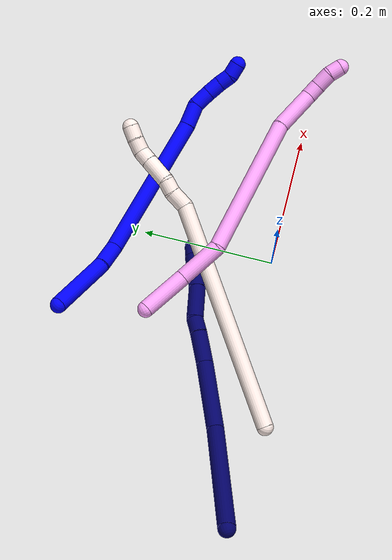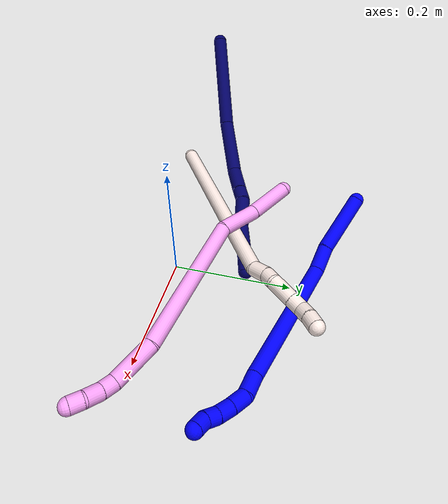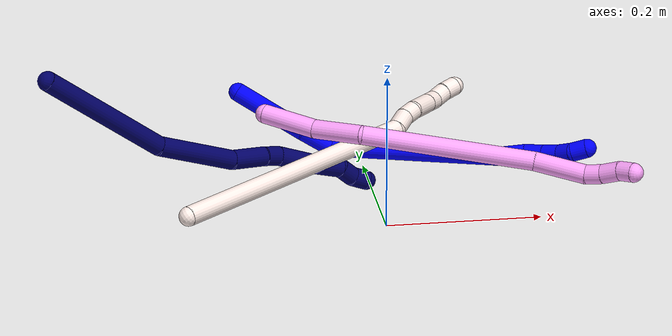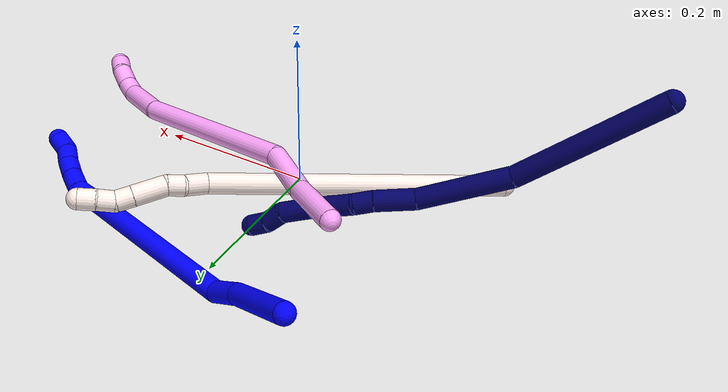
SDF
<sdf version="1.7">
 <world name="default">
  <model name="1">
   <static>0</static>
   <link name="1">
    <collision name="collision-cylinder-e_1_1_4">
     <pose>0.050886 -0.006132 -0.006552 2.38928 1.39624 2.26171</pose>
     <geometry><cylinder><radius>0.0125</radius><length>0.103343</length></cylinder></geometry>
     <surface>
      <friction><ode><mu>1.16</mu><mu2>1.16</mu2><slip1>0</slip1><slip2>0</slip2></ode></friction>
      <contact><ode><kp>1e+06</kp><kd>1</kd><max_vel>0</max_vel><min_depth>0.001</min_depth></ode></contact>
     </surface>
    </collision>
    <visual name="visual-cylinder-e_1_1_4">
     <pose>0.050886 -0.006132 -0.006552 2.38928 1.39624 2.26171</pose>
     <geometry><cylinder><radius>0.0125</radius><length>0.103343</length></cylinder></geometry>
     <material><ambient>0 0 1 1</ambient></material>
    </visual>
    <collision name="collision-cylinder-e_2_4_5">
     <pose>0.122388 -0.018203 -0.014218 1.75629 1.28565 1.46845</pose>
     <geometry><cylinder><radius>0.0125</radius><length>0.042965</length></cylinder></geometry>
     <surface>
      <friction><ode><mu>1.16</mu><mu2>1.16</mu2><slip1>0</slip1><slip2>0</slip2></ode></friction>
      <contact><ode><kp>1e+06</kp><kd>1</kd><max_vel>0</max_vel><min_depth>0.001</min_depth></ode></contact>
     </surface>
    </collision>
    <visual name="visual-cylinder-e_2_4_5">
     <pose>0.122388 -0.018203 -0.014218 1.75629 1.28565 1.46845</pose>
     <geometry><cylinder><radius>0.0125</radius><length>0.042965</length></cylinder></geometry>
     <material><ambient>0 0 1 1</ambient></material>
    </visual>
    <collision name="collision-cylinder-e_3_5_6">
     <pose>0.232405 -0.06129 -0.073582 2.57389 0.912888 2.06942</pose>
     <geometry><cylinder><radius>0.0125</radius><length>0.225972</length></cylinder></geometry>
     <surface>
      <friction><ode><mu>1.16</mu><mu2>1.16</mu2><slip1>0</slip1><slip2>0</slip2></ode></friction>
      <contact><ode><kp>1e+06</kp><kd>1</kd><max_vel>0</max_vel><min_depth>0.001</min_depth></ode></contact>
     </surface>
    </collision>
    <visual name="visual-cylinder-e_3_5_6">
     <pose>0.232405 -0.06129 -0.073582 2.57389 0.912888 2.06942</pose>
     <geometry><cylinder><radius>0.0125</radius><length>0.225972</length></cylinder></geometry>
     <material><ambient>0 0 1 1</ambient></material>
    </visual>
    <collision name="collision-cylinder-e_4_6_7">
     <pose>0.334014 -0.10633 -0.142329 2.49698 0.748832 1.73278</pose>
     <geometry><cylinder><radius>0.0125</radius><length>0.035859</length></cylinder></geometry>
     <surface>
      <friction><ode><mu>1.16</mu><mu2>1.16</mu2><slip1>0</slip1><slip2>0</slip2></ode></friction>
      <contact><ode><kp>1e+06</kp><kd>1</kd><max_vel>0</max_vel><min_depth>0.001</min_depth></ode></contact>
     </surface>
    </collision>
    <visual name="visual-cylinder-e_4_6_7">
     <pose>0.334014 -0.10633 -0.142329 2.49698 0.748832 1.73278</pose>
     <geometry><cylinder><radius>0.0125</radius><length>0.035859</length></cylinder></geometry>
     <material><ambient>0 0 1 1</ambient></material>
    </visual>
    <collision name="collision-cylinder-e_5_7_8">
     <pose>0.356217 -0.114599 -0.162164 3.10118 0.819146 3.04856</pose>
     <geometry><cylinder><radius>0.0125</radius><length>0.027368</length></cylinder></geometry>
     <surface>
      <friction><ode><mu>1.16</mu><mu2>1.16</mu2><slip1>0</slip1><slip2>0</slip2></ode></friction>
      <contact><ode><kp>1e+06</kp><kd>1</kd><max_vel>0</max_vel><min_depth>0.001</min_depth></ode></contact>
     </surface>
    </collision>
    <visual name="visual-cylinder-e_5_7_8">
     <pose>0.356217 -0.114599 -0.162164 3.10118 0.819146 3.04856</pose>
     <geometry><cylinder><radius>0.0125</radius><length>0.027368</length></cylinder></geometry>
     <material><ambient>0 0 1 1</ambient></material>
    </visual>
    <collision name="collision-cylinder-e_6_8_9">
     <pose>0.374234 -0.11454 -0.180093 -3.09091 0.750272 -3.01303</pose>
     <geometry><cylinder><radius>0.0125</radius><length>0.023523</length></cylinder></geometry>
     <surface>
      <friction><ode><mu>1.16</mu><mu2>1.16</mu2><slip1>0</slip1><slip2>0</slip2></ode></friction>
      <contact><ode><kp>1e+06</kp><kd>1</kd><max_vel>0</max_vel><min_depth>0.001</min_depth></ode></contact>
     </surface>
    </collision>
    <visual name="visual-cylinder-e_6_8_9">
     <pose>0.374234 -0.11454 -0.180093 -3.09091 0.750272 -3.01303</pose>
     <geometry><cylinder><radius>0.0125</radius><length>0.023523</length></cylinder></geometry>
     <material><ambient>0 0 1 1</ambient></material>
    </visual>
    <collision name="collision-cylinder-e_7_9_10">
     <pose>0.387843 -0.112558 -0.196939 -2.95643 0.58727 -2.54576</pose>
     <geometry><cylinder><radius>0.0125</radius><length>0.020176</length></cylinder></geometry>
     <surface>
      <friction><ode><mu>1.16</mu><mu2>1.16</mu2><slip1>0</slip1><slip2>0</slip2></ode></friction>
      <contact><ode><kp>1e+06</kp><kd>1</kd><max_vel>0</max_vel><min_depth>0.001</min_depth></ode></contact>
     </surface>
    </collision>
    <visual name="visual-cylinder-e_7_9_10">
     <pose>0.387843 -0.112558 -0.196939 -2.95643 0.58727 -2.54576</pose>
     <geometry><cylinder><radius>0.0125</radius><length>0.020176</length></cylinder></geometry>
     <material><ambient>0 0 1 1</ambient></material>
    </visual>
    <collision name="collision-cylinder-e_8_10_2">
     <pose>0.399282 -0.113711 -0.213355 2.82218 0.597482 2.17775</pose>
     <geometry><cylinder><radius>0.0125</radius><length>0.020794</length></cylinder></geometry>
     <surface>
      <friction><ode><mu>1.16</mu><mu2>1.16</mu2><slip1>0</slip1><slip2>0</slip2></ode></friction>
      <contact><ode><kp>1e+06</kp><kd>1</kd><max_vel>0</max_vel><min_depth>0.001</min_depth></ode></contact>
     </surface>
    </collision>
    <visual name="visual-cylinder-e_8_10_2">
     <pose>0.399282 -0.113711 -0.213355 2.82218 0.597482 2.17775</pose>
     <geometry><cylinder><radius>0.0125</radius><length>0.020794</length></cylinder></geometry>
     <material><ambient>0 0 1 1</ambient></material>
    </visual>
    <collision name="collision-sphere-2">
     <pose>0.405131 -0.116411 -0.221516 0 -0 0</pose>
     <geometry><sphere><radius>0.0125</radius></sphere></geometry>
     <surface>
      <friction><ode><mu>1.16</mu><mu2>1.16</mu2><slip1>0</slip1><slip2>0</slip2></ode></friction>
      <contact><ode><kp>1e+06</kp><kd>1</kd><max_vel>0</max_vel><min_depth>0.001</min_depth></ode></contact>
     </surface>
    </collision>
    <visual name="visual-sphere-2">
     <pose>0.405131 -0.116411 -0.221516 0 -0 0</pose>
     <geometry><sphere><radius>0.0125</radius></sphere></geometry>
     <material><ambient>0 0 1 1</ambient></material>
    </visual>
    <collision name="collision-sphere-10">
     <pose>0.393432 -0.111012 -0.205194 0 -0 0</pose>
     <geometry><sphere><radius>0.0125</radius></sphere></geometry>
     <surface>
      <friction><ode><mu>1.16</mu><mu2>1.16</mu2><slip1>0</slip1><slip2>0</slip2></ode></friction>
      <contact><ode><kp>1e+06</kp><kd>1</kd><max_vel>0</max_vel><min_depth>0.001</min_depth></ode></contact>
     </surface>
    </collision>
    <visual name="visual-sphere-10">
     <pose>0.393432 -0.111012 -0.205194 0 -0 0</pose>
     <geometry><sphere><radius>0.0125</radius></sphere></geometry>
     <material><ambient>0 0 1 1</ambient></material>
    </visual>
    <collision name="collision-sphere-9">
     <pose>0.382253 -0.114104 -0.188685 0 -0 0</pose>
     <geometry><sphere><radius>0.0125</radius></sphere></geometry>
     <surface>
      <friction><ode><mu>1.16</mu><mu2>1.16</mu2><slip1>0</slip1><slip2>0</slip2></ode></friction>
      <contact><ode><kp>1e+06</kp><kd>1</kd><max_vel>0</max_vel><min_depth>0.001</min_depth></ode></contact>
     </surface>
    </collision>
    <visual name="visual-sphere-9">
     <pose>0.382253 -0.114104 -0.188685 0 -0 0</pose>
     <geometry><sphere><radius>0.0125</radius></sphere></geometry>
     <material><ambient>0 0 1 1</ambient></material>
    </visual>
    <collision name="collision-sphere-4">
     <pose>0.101773 -0.012264 -0.013104 0 -0 0</pose>
     <geometry><sphere><radius>0.0125</radius></sphere></geometry>
     <surface>
      <friction><ode><mu>1.16</mu><mu2>1.16</mu2><slip1>0</slip1><slip2>0</slip2></ode></friction>
      <contact><ode><kp>1e+06</kp><kd>1</kd><max_vel>0</max_vel><min_depth>0.001</min_depth></ode></contact>
     </surface>
    </collision>
    <visual name="visual-sphere-4">
     <pose>0.101773 -0.012264 -0.013104 0 -0 0</pose>
     <geometry><sphere><radius>0.0125</radius></sphere></geometry>
     <material><ambient>0 0 1 1</ambient></material>
    </visual>
    <collision name="collision-sphere-1">
     <geometry><sphere><radius>0.0125</radius></sphere></geometry>
     <surface>
      <friction><ode><mu>1.16</mu><mu2>1.16</mu2><slip1>0</slip1><slip2>0</slip2></ode></friction>
      <contact><ode><kp>1e+06</kp><kd>1</kd><max_vel>0</max_vel><min_depth>0.001</min_depth></ode></contact>
     </surface>
    </collision>
    <visual name="visual-sphere-1">
     <geometry><sphere><radius>0.0125</radius></sphere></geometry>
     <material><ambient>0 0 1 1</ambient></material>
    </visual>
    <collision name="collision-sphere-8">
     <pose>0.366214 -0.114976 -0.1715 0 -0 0</pose>
     <geometry><sphere><radius>0.0125</radius></sphere></geometry>
     <surface>
      <friction><ode><mu>1.16</mu><mu2>1.16</mu2><slip1>0</slip1><slip2>0</slip2></ode></friction>
      <contact><ode><kp>1e+06</kp><kd>1</kd><max_vel>0</max_vel><min_depth>0.001</min_depth></ode></contact>
     </surface>
    </collision>
    <visual name="visual-sphere-8">
     <pose>0.366214 -0.114976 -0.1715 0 -0 0</pose>
     <geometry><sphere><radius>0.0125</radius></sphere></geometry>
     <material><ambient>0 0 1 1</ambient></material>
    </visual>
    <collision name="collision-sphere-5">
     <pose>0.143003 -0.024143 -0.015333 0 -0 0</pose>
     <geometry><sphere><radius>0.0125</radius></sphere></geometry>
     <surface>
      <friction><ode><mu>1.16</mu><mu2>1.16</mu2><slip1>0</slip1><slip2>0</slip2></ode></friction>
      <contact><ode><kp>1e+06</kp><kd>1</kd><max_vel>0</max_vel><min_depth>0.001</min_depth></ode></contact>
     </surface>
    </collision>
    <visual name="visual-sphere-5">
     <pose>0.143003 -0.024143 -0.015333 0 -0 0</pose>
     <geometry><sphere><radius>0.0125</radius></sphere></geometry>
     <material><ambient>0 0 1 1</ambient></material>
    </visual>
    <collision name="collision-sphere-6">
     <pose>0.321808 -0.098438 -0.131832 0 -0 0</pose>
     <geometry><sphere><radius>0.0125</radius></sphere></geometry>
     <surface>
      <friction><ode><mu>1.16</mu><mu2>1.16</mu2><slip1>0</slip1><slip2>0</slip2></ode></friction>
      <contact><ode><kp>1e+06</kp><kd>1</kd><max_vel>0</max_vel><min_depth>0.001</min_depth></ode></contact>
     </surface>
    </collision>
    <visual name="visual-sphere-6">
     <pose>0.321808 -0.098438 -0.131832 0 -0 0</pose>
     <geometry><sphere><radius>0.0125</radius></sphere></geometry>
     <material><ambient>0 0 1 1</ambient></material>
    </visual>
    <collision name="collision-sphere-7">
     <pose>0.34622 -0.114221 -0.152827 0 -0 0</pose>
     <geometry><sphere><radius>0.0125</radius></sphere></geometry>
     <surface>
      <friction><ode><mu>1.16</mu><mu2>1.16</mu2><slip1>0</slip1><slip2>0</slip2></ode></friction>
      <contact><ode><kp>1e+06</kp><kd>1</kd><max_vel>0</max_vel><min_depth>0.001</min_depth></ode></contact>
     </surface>
    </collision>
    <visual name="visual-sphere-7">
     <pose>0.34622 -0.114221 -0.152827 0 -0 0</pose>
     <geometry><sphere><radius>0.0125</radius></sphere></geometry>
     <material><ambient>0 0 1 1</ambient></material>
    </visual>
    <inertial>
     <pose>0.219383 -0.05909 -0.080207 0 -0 0</pose>
     <mass>0.5</mass>
     <inertia>
      <ixx>0.000272</ixx>
      <ixy>0</ixy>
      <ixz>0</ixz>
      <iyy>0.001397</iyy>
      <iyz>0</iyz>
      <izz>-0.000561</izz>
     </inertia>
    </inertial>
   </link>
   <pose>-0.157883 0.287241 0.081157 -3.07738 0.605098 -0.563404</pose>
  </model>
  <model name="4">
   <static>0</static>
   <link name="4">
    <collision name="collision-cylinder-e_1_1_4">
     <pose>0.005937 0.010677 -0.03429 -2.83973 0.163828 -0.989957</pose>
     <geometry><cylinder><radius>0.0125</radius><length>0.072802</length></cylinder></geometry>
     <surface>
      <friction><ode><mu>1.16</mu><mu2>1.16</mu2><slip1>0</slip1><slip2>0</slip2></ode></friction>
      <contact><ode><kp>1e+06</kp><kd>1</kd><max_vel>0</max_vel><min_depth>0.001</min_depth></ode></contact>
     </surface>
    </collision>
    <visual name="visual-cylinder-e_1_1_4">
     <pose>0.005937 0.010677 -0.03429 -2.83973 0.163828 -0.989957</pose>
     <geometry><cylinder><radius>0.0125</radius><length>0.072802</length></cylinder></geometry>
     <material><ambient>1 0.65098 0.996078 1</ambient></material>
    </visual>
    <collision name="collision-cylinder-e_2_4_5">
     <pose>0.018717 0.025267 -0.101655 -3.02384 0.202646 -2.09081</pose>
     <geometry><cylinder><radius>0.0125</radius><length>0.068003</length></cylinder></geometry>
     <surface>
      <friction><ode><mu>1.16</mu><mu2>1.16</mu2><slip1>0</slip1><slip2>0</slip2></ode></friction>
      <contact><ode><kp>1e+06</kp><kd>1</kd><max_vel>0</max_vel><min_depth>0.001</min_depth></ode></contact>
     </surface>
    </collision>
    <visual name="visual-cylinder-e_2_4_5">
     <pose>0.018717 0.025267 -0.101655 -3.02384 0.202646 -2.09081</pose>
     <geometry><cylinder><radius>0.0125</radius><length>0.068003</length></cylinder></geometry>
     <material><ambient>1 0.65098 0.996078 1</ambient></material>
    </visual>
    <collision name="collision-cylinder-e_3_5_6">
     <pose>0.079008 0.073231 -0.222538 -2.67661 0.498276 -1.64263</pose>
     <geometry><cylinder><radius>0.0125</radius><length>0.223674</length></cylinder></geometry>
     <surface>
      <friction><ode><mu>1.16</mu><mu2>1.16</mu2><slip1>0</slip1><slip2>0</slip2></ode></friction>
      <contact><ode><kp>1e+06</kp><kd>1</kd><max_vel>0</max_vel><min_depth>0.001</min_depth></ode></contact>
     </surface>
    </collision>
    <visual name="visual-cylinder-e_3_5_6">
     <pose>0.079008 0.073231 -0.222538 -2.67661 0.498276 -1.64263</pose>
     <geometry><cylinder><radius>0.0125</radius><length>0.223674</length></cylinder></geometry>
     <material><ambient>1 0.65098 0.996078 1</ambient></material>
    </visual>
    <collision name="collision-cylinder-e_4_6_7">
     <pose>0.141522 0.128849 -0.341301 -2.78398 0.267744 -1.2808</pose>
     <geometry><cylinder><radius>0.0125</radius><length>0.068532</length></cylinder></geometry>
     <surface>
      <friction><ode><mu>1.16</mu><mu2>1.16</mu2><slip1>0</slip1><slip2>0</slip2></ode></friction>
      <contact><ode><kp>1e+06</kp><kd>1</kd><max_vel>0</max_vel><min_depth>0.001</min_depth></ode></contact>
     </surface>
    </collision>
    <visual name="visual-cylinder-e_4_6_7">
     <pose>0.141522 0.128849 -0.341301 -2.78398 0.267744 -1.2808</pose>
     <geometry><cylinder><radius>0.0125</radius><length>0.068532</length></cylinder></geometry>
     <material><ambient>1 0.65098 0.996078 1</ambient></material>
    </visual>
    <collision name="collision-cylinder-e_5_7_8">
     <pose>0.154043 0.140674 -0.382526 -3.11643 0.324504 -2.98816</pose>
     <geometry><cylinder><radius>0.0125</radius><length>0.021678</length></cylinder></geometry>
     <surface>
      <friction><ode><mu>1.16</mu><mu2>1.16</mu2><slip1>0</slip1><slip2>0</slip2></ode></friction>
      <contact><ode><kp>1e+06</kp><kd>1</kd><max_vel>0</max_vel><min_depth>0.001</min_depth></ode></contact>
     </surface>
    </collision>
    <visual name="visual-cylinder-e_5_7_8">
     <pose>0.154043 0.140674 -0.382526 -3.11643 0.324504 -2.98816</pose>
     <geometry><cylinder><radius>0.0125</radius><length>0.021678</length></cylinder></geometry>
     <material><ambient>1 0.65098 0.996078 1</ambient></material>
    </visual>
    <collision name="collision-cylinder-e_6_8_9">
     <pose>0.161292 0.138976 -0.404659 2.9781 0.305579 2.16369</pose>
     <geometry><cylinder><radius>0.0125</radius><length>0.025215</length></cylinder></geometry>
     <surface>
      <friction><ode><mu>1.16</mu><mu2>1.16</mu2><slip1>0</slip1><slip2>0</slip2></ode></friction>
      <contact><ode><kp>1e+06</kp><kd>1</kd><max_vel>0</max_vel><min_depth>0.001</min_depth></ode></contact>
     </surface>
    </collision>
    <visual name="visual-cylinder-e_6_8_9">
     <pose>0.161292 0.138976 -0.404659 2.9781 0.305579 2.16369</pose>
     <geometry><cylinder><radius>0.0125</radius><length>0.025215</length></cylinder></geometry>
     <material><ambient>1 0.65098 0.996078 1</ambient></material>
    </visual>
    <collision name="collision-cylinder-e_7_9_2">
     <pose>0.165579 0.136854 -0.426556 3.12514 0.04922 2.49639</pose>
     <geometry><cylinder><radius>0.0125</radius><length>0.020095</length></cylinder></geometry>
     <surface>
      <friction><ode><mu>1.16</mu><mu2>1.16</mu2><slip1>0</slip1><slip2>0</slip2></ode></friction>
      <contact><ode><kp>1e+06</kp><kd>1</kd><max_vel>0</max_vel><min_depth>0.001</min_depth></ode></contact>
     </surface>
    </collision>
    <visual name="visual-cylinder-e_7_9_2">
     <pose>0.165579 0.136854 -0.426556 3.12514 0.04922 2.49639</pose>
     <geometry><cylinder><radius>0.0125</radius><length>0.020095</length></cylinder></geometry>
     <material><ambient>1 0.65098 0.996078 1</ambient></material>
    </visual>
    <collision name="collision-sphere-2">
     <pose>0.166074 0.136689 -0.436591 0 -0 0</pose>
     <geometry><sphere><radius>0.0125</radius></sphere></geometry>
     <surface>
      <friction><ode><mu>1.16</mu><mu2>1.16</mu2><slip1>0</slip1><slip2>0</slip2></ode></friction>
      <contact><ode><kp>1e+06</kp><kd>1</kd><max_vel>0</max_vel><min_depth>0.001</min_depth></ode></contact>
     </surface>
    </collision>
    <visual name="visual-sphere-2">
     <pose>0.166074 0.136689 -0.436591 0 -0 0</pose>
     <geometry><sphere><radius>0.0125</radius></sphere></geometry>
     <material><ambient>1 0.65098 0.996078 1</ambient></material>
    </visual>
    <collision name="collision-sphere-9">
     <pose>0.165085 0.137019 -0.416522 0 -0 0</pose>
     <geometry><sphere><radius>0.0125</radius></sphere></geometry>
     <surface>
      <friction><ode><mu>1.16</mu><mu2>1.16</mu2><slip1>0</slip1><slip2>0</slip2></ode></friction>
      <contact><ode><kp>1e+06</kp><kd>1</kd><max_vel>0</max_vel><min_depth>0.001</min_depth></ode></contact>
     </surface>
    </collision>
    <visual name="visual-sphere-9">
     <pose>0.165085 0.137019 -0.416522 0 -0 0</pose>
     <geometry><sphere><radius>0.0125</radius></sphere></geometry>
     <material><ambient>1 0.65098 0.996078 1</ambient></material>
    </visual>
    <collision name="collision-sphere-4">
     <pose>0.011874 0.021354 -0.06858 0 -0 0</pose>
     <geometry><sphere><radius>0.0125</radius></sphere></geometry>
     <surface>
      <friction><ode><mu>1.16</mu><mu2>1.16</mu2><slip1>0</slip1><slip2>0</slip2></ode></friction>
      <contact><ode><kp>1e+06</kp><kd>1</kd><max_vel>0</max_vel><min_depth>0.001</min_depth></ode></contact>
     </surface>
    </collision>
    <visual name="visual-sphere-4">
     <pose>0.011874 0.021354 -0.06858 0 -0 0</pose>
     <geometry><sphere><radius>0.0125</radius></sphere></geometry>
     <material><ambient>1 0.65098 0.996078 1</ambient></material>
    </visual>
    <collision name="collision-sphere-1">
     <geometry><sphere><radius>0.0125</radius></sphere></geometry>
     <surface>
      <friction><ode><mu>1.16</mu><mu2>1.16</mu2><slip1>0</slip1><slip2>0</slip2></ode></friction>
      <contact><ode><kp>1e+06</kp><kd>1</kd><max_vel>0</max_vel><min_depth>0.001</min_depth></ode></contact>
     </surface>
    </collision>
    <visual name="visual-sphere-1">
     <geometry><sphere><radius>0.0125</radius></sphere></geometry>
     <material><ambient>1 0.65098 0.996078 1</ambient></material>
    </visual>
    <collision name="collision-sphere-8">
     <pose>0.157499 0.140933 -0.392796 0 -0 0</pose>
     <geometry><sphere><radius>0.0125</radius></sphere></geometry>
     <surface>
      <friction><ode><mu>1.16</mu><mu2>1.16</mu2><slip1>0</slip1><slip2>0</slip2></ode></friction>
      <contact><ode><kp>1e+06</kp><kd>1</kd><max_vel>0</max_vel><min_depth>0.001</min_depth></ode></contact>
     </surface>
    </collision>
    <visual name="visual-sphere-8">
     <pose>0.157499 0.140933 -0.392796 0 -0 0</pose>
     <geometry><sphere><radius>0.0125</radius></sphere></geometry>
     <material><ambient>1 0.65098 0.996078 1</ambient></material>
    </visual>
    <collision name="collision-sphere-5">
     <pose>0.02556 0.02918 -0.13473 0 -0 0</pose>
     <geometry><sphere><radius>0.0125</radius></sphere></geometry>
     <surface>
      <friction><ode><mu>1.16</mu><mu2>1.16</mu2><slip1>0</slip1><slip2>0</slip2></ode></friction>
      <contact><ode><kp>1e+06</kp><kd>1</kd><max_vel>0</max_vel><min_depth>0.001</min_depth></ode></contact>
     </surface>
    </collision>
    <visual name="visual-sphere-5">
     <pose>0.02556 0.02918 -0.13473 0 -0 0</pose>
     <geometry><sphere><radius>0.0125</radius></sphere></geometry>
     <material><ambient>1 0.65098 0.996078 1</ambient></material>
    </visual>
    <collision name="collision-sphere-6">
     <pose>0.132457 0.117282 -0.310347 0 -0 0</pose>
     <geometry><sphere><radius>0.0125</radius></sphere></geometry>
     <surface>
      <friction><ode><mu>1.16</mu><mu2>1.16</mu2><slip1>0</slip1><slip2>0</slip2></ode></friction>
      <contact><ode><kp>1e+06</kp><kd>1</kd><max_vel>0</max_vel><min_depth>0.001</min_depth></ode></contact>
     </surface>
    </collision>
    <visual name="visual-sphere-6">
     <pose>0.132457 0.117282 -0.310347 0 -0 0</pose>
     <geometry><sphere><radius>0.0125</radius></sphere></geometry>
     <material><ambient>1 0.65098 0.996078 1</ambient></material>
    </visual>
    <collision name="collision-sphere-7">
     <pose>0.150587 0.140416 -0.372256 0 -0 0</pose>
     <geometry><sphere><radius>0.0125</radius></sphere></geometry>
     <surface>
      <friction><ode><mu>1.16</mu><mu2>1.16</mu2><slip1>0</slip1><slip2>0</slip2></ode></friction>
      <contact><ode><kp>1e+06</kp><kd>1</kd><max_vel>0</max_vel><min_depth>0.001</min_depth></ode></contact>
     </surface>
    </collision>
    <visual name="visual-sphere-7">
     <pose>0.150587 0.140416 -0.372256 0 -0 0</pose>
     <geometry><sphere><radius>0.0125</radius></sphere></geometry>
     <material><ambient>1 0.65098 0.996078 1</ambient></material>
    </visual>
    <inertial>
     <pose>0.079619 0.074019 -0.219286 0 -0 0</pose>
     <mass>0.5</mass>
     <inertia>
      <ixx>-0.00094</ixx>
      <ixy>0</ixy>
      <ixz>0</ixz>
      <iyy>-0.000634</iyy>
      <iyz>0</iyz>
      <izz>-0.000899</izz>
     </inertia>
    </inertial>
   </link>
   <pose>-0.135597 0.159512 0.098341 -1.67824 -0.329414 0.775263</pose>
  </model>
  <model name="7">
   <static>0</static>
   <link name="7">
    <collision name="collision-cylinder-e_1_1_4">
     <pose>0.011464 -0.023406 -0.086864 2.87839 0.126752 0.894121</pose>
     <geometry><cylinder><radius>0.0125</radius><length>0.18138</length></cylinder></geometry>
     <surface>
      <friction><ode><mu>1.16</mu><mu2>1.16</mu2><slip1>0</slip1><slip2>0</slip2></ode></friction>
      <contact><ode><kp>1e+06</kp><kd>1</kd><max_vel>0</max_vel><min_depth>0.001</min_depth></ode></contact>
     </surface>
    </collision>
    <visual name="visual-cylinder-e_1_1_4">
     <pose>0.011464 -0.023406 -0.086864 2.87839 0.126752 0.894121</pose>
     <geometry><cylinder><radius>0.0125</radius><length>0.18138</length></cylinder></geometry>
     <material><ambient>0.003922 0 0.403922 1</ambient></material>
    </visual>
    <collision name="collision-cylinder-e_2_4_5">
     <pose>0.028657 -0.045352 -0.228597 -3.11498 0.103983 -2.64096</pose>
     <geometry><cylinder><radius>0.0125</radius><length>0.110371</length></cylinder></geometry>
     <surface>
      <friction><ode><mu>1.16</mu><mu2>1.16</mu2><slip1>0</slip1><slip2>0</slip2></ode></friction>
      <contact><ode><kp>1e+06</kp><kd>1</kd><max_vel>0</max_vel><min_depth>0.001</min_depth></ode></contact>
     </surface>
    </collision>
    <visual name="visual-cylinder-e_2_4_5">
     <pose>0.028657 -0.045352 -0.228597 -3.11498 0.103983 -2.64096</pose>
     <geometry><cylinder><radius>0.0125</radius><length>0.110371</length></cylinder></geometry>
     <material><ambient>0.003922 0 0.403922 1</ambient></material>
    </visual>
    <collision name="collision-cylinder-e_3_5_6">
     <pose>0.036002 -0.037105 -0.30666 -2.85696 0.066799 -0.458178</pose>
     <geometry><cylinder><radius>0.0125</radius><length>0.048443</length></cylinder></geometry>
     <surface>
      <friction><ode><mu>1.16</mu><mu2>1.16</mu2><slip1>0</slip1><slip2>0</slip2></ode></friction>
      <contact><ode><kp>1e+06</kp><kd>1</kd><max_vel>0</max_vel><min_depth>0.001</min_depth></ode></contact>
     </surface>
    </collision>
    <visual name="visual-cylinder-e_3_5_6">
     <pose>0.036002 -0.037105 -0.30666 -2.85696 0.066799 -0.458178</pose>
     <geometry><cylinder><radius>0.0125</radius><length>0.048443</length></cylinder></geometry>
     <material><ambient>0.003922 0 0.403922 1</ambient></material>
    </visual>
    <collision name="collision-cylinder-e_4_6_7">
     <pose>0.037733 -0.028248 -0.341144 -2.96018 0.009967 -0.109475</pose>
     <geometry><cylinder><radius>0.0125</radius><length>0.022955</length></cylinder></geometry>
     <surface>
      <friction><ode><mu>1.16</mu><mu2>1.16</mu2><slip1>0</slip1><slip2>0</slip2></ode></friction>
      <contact><ode><kp>1e+06</kp><kd>1</kd><max_vel>0</max_vel><min_depth>0.001</min_depth></ode></contact>
     </surface>
    </collision>
    <visual name="visual-cylinder-e_4_6_7">
     <pose>0.037733 -0.028248 -0.341144 -2.96018 0.009967 -0.109475</pose>
     <geometry><cylinder><radius>0.0125</radius><length>0.022955</length></cylinder></geometry>
     <material><ambient>0.003922 0 0.403922 1</ambient></material>
    </visual>
    <collision name="collision-cylinder-e_5_7_8">
     <pose>0.045969 -0.02532 -0.37845 -3.10868 0.302418 -2.92641</pose>
     <geometry><cylinder><radius>0.0125</radius><length>0.054538</length></cylinder></geometry>
     <surface>
      <friction><ode><mu>1.16</mu><mu2>1.16</mu2><slip1>0</slip1><slip2>0</slip2></ode></friction>
      <contact><ode><kp>1e+06</kp><kd>1</kd><max_vel>0</max_vel><min_depth>0.001</min_depth></ode></contact>
     </surface>
    </collision>
    <visual name="visual-cylinder-e_5_7_8">
     <pose>0.045969 -0.02532 -0.37845 -3.10868 0.302418 -2.92641</pose>
     <geometry><cylinder><radius>0.0125</radius><length>0.054538</length></cylinder></geometry>
     <material><ambient>0.003922 0 0.403922 1</ambient></material>
    </visual>
    <collision name="collision-cylinder-e_6_8_9">
     <pose>0.056855 -0.022921 -0.422306 -3.0553 0.153226 -2.1169</pose>
     <geometry><cylinder><radius>0.0125</radius><length>0.036235</length></cylinder></geometry>
     <surface>
      <friction><ode><mu>1.16</mu><mu2>1.16</mu2><slip1>0</slip1><slip2>0</slip2></ode></friction>
      <contact><ode><kp>1e+06</kp><kd>1</kd><max_vel>0</max_vel><min_depth>0.001</min_depth></ode></contact>
     </surface>
    </collision>
    <visual name="visual-cylinder-e_6_8_9">
     <pose>0.056855 -0.022921 -0.422306 -3.0553 0.153226 -2.1169</pose>
     <geometry><cylinder><radius>0.0125</radius><length>0.036235</length></cylinder></geometry>
     <material><ambient>0.003922 0 0.403922 1</ambient></material>
    </visual>
    <collision name="collision-cylinder-e_7_9_10">
     <pose>0.060624 -0.025239 -0.451599 2.81647 0.082851 0.495087</pose>
     <geometry><cylinder><radius>0.0125</radius><length>0.024259</length></cylinder></geometry>
     <surface>
      <friction><ode><mu>1.16</mu><mu2>1.16</mu2><slip1>0</slip1><slip2>0</slip2></ode></friction>
      <contact><ode><kp>1e+06</kp><kd>1</kd><max_vel>0</max_vel><min_depth>0.001</min_depth></ode></contact>
     </surface>
    </collision>
    <visual name="visual-cylinder-e_7_9_10">
     <pose>0.060624 -0.025239 -0.451599 2.81647 0.082851 0.495087</pose>
     <geometry><cylinder><radius>0.0125</radius><length>0.024259</length></cylinder></geometry>
     <material><ambient>0.003922 0 0.403922 1</ambient></material>
    </visual>
    <collision name="collision-cylinder-e_8_10_2">
     <pose>0.063803 -0.029307 -0.473742 3.12224 0.200677 2.94994</pose>
     <geometry><cylinder><radius>0.0125</radius><length>0.021819</length></cylinder></geometry>
     <surface>
      <friction><ode><mu>1.16</mu><mu2>1.16</mu2><slip1>0</slip1><slip2>0</slip2></ode></friction>
      <contact><ode><kp>1e+06</kp><kd>1</kd><max_vel>0</max_vel><min_depth>0.001</min_depth></ode></contact>
     </surface>
    </collision>
    <visual name="visual-cylinder-e_8_10_2">
     <pose>0.063803 -0.029307 -0.473742 3.12224 0.200677 2.94994</pose>
     <geometry><cylinder><radius>0.0125</radius><length>0.021819</length></cylinder></geometry>
     <material><ambient>0.003922 0 0.403922 1</ambient></material>
    </visual>
    <collision name="collision-sphere-2">
     <pose>0.065977 -0.029514 -0.48443 0 -0 0</pose>
     <geometry><sphere><radius>0.0125</radius></sphere></geometry>
     <surface>
      <friction><ode><mu>1.16</mu><mu2>1.16</mu2><slip1>0</slip1><slip2>0</slip2></ode></friction>
      <contact><ode><kp>1e+06</kp><kd>1</kd><max_vel>0</max_vel><min_depth>0.001</min_depth></ode></contact>
     </surface>
    </collision>
    <visual name="visual-sphere-2">
     <pose>0.065977 -0.029514 -0.48443 0 -0 0</pose>
     <geometry><sphere><radius>0.0125</radius></sphere></geometry>
     <material><ambient>0.003922 0 0.403922 1</ambient></material>
    </visual>
    <collision name="collision-sphere-10">
     <pose>0.061628 -0.0291 -0.463053 0 -0 0</pose>
     <geometry><sphere><radius>0.0125</radius></sphere></geometry>
     <surface>
      <friction><ode><mu>1.16</mu><mu2>1.16</mu2><slip1>0</slip1><slip2>0</slip2></ode></friction>
      <contact><ode><kp>1e+06</kp><kd>1</kd><max_vel>0</max_vel><min_depth>0.001</min_depth></ode></contact>
     </surface>
    </collision>
    <visual name="visual-sphere-10">
     <pose>0.061628 -0.0291 -0.463053 0 -0 0</pose>
     <geometry><sphere><radius>0.0125</radius></sphere></geometry>
     <material><ambient>0.003922 0 0.403922 1</ambient></material>
    </visual>
    <collision name="collision-sphere-9">
     <pose>0.059621 -0.021377 -0.440144 0 -0 0</pose>
     <geometry><sphere><radius>0.0125</radius></sphere></geometry>
     <surface>
      <friction><ode><mu>1.16</mu><mu2>1.16</mu2><slip1>0</slip1><slip2>0</slip2></ode></friction>
      <contact><ode><kp>1e+06</kp><kd>1</kd><max_vel>0</max_vel><min_depth>0.001</min_depth></ode></contact>
     </surface>
    </collision>
    <visual name="visual-sphere-9">
     <pose>0.059621 -0.021377 -0.440144 0 -0 0</pose>
     <geometry><sphere><radius>0.0125</radius></sphere></geometry>
     <material><ambient>0.003922 0 0.403922 1</ambient></material>
    </visual>
    <collision name="collision-sphere-4">
     <pose>0.022929 -0.046812 -0.173729 0 -0 0</pose>
     <geometry><sphere><radius>0.0125</radius></sphere></geometry>
     <surface>
      <friction><ode><mu>1.16</mu><mu2>1.16</mu2><slip1>0</slip1><slip2>0</slip2></ode></friction>
      <contact><ode><kp>1e+06</kp><kd>1</kd><max_vel>0</max_vel><min_depth>0.001</min_depth></ode></contact>
     </surface>
    </collision>
    <visual name="visual-sphere-4">
     <pose>0.022929 -0.046812 -0.173729 0 -0 0</pose>
     <geometry><sphere><radius>0.0125</radius></sphere></geometry>
     <material><ambient>0.003922 0 0.403922 1</ambient></material>
    </visual>
    <collision name="collision-sphere-1">
     <geometry><sphere><radius>0.0125</radius></sphere></geometry>
     <surface>
      <friction><ode><mu>1.16</mu><mu2>1.16</mu2><slip1>0</slip1><slip2>0</slip2></ode></friction>
      <contact><ode><kp>1e+06</kp><kd>1</kd><max_vel>0</max_vel><min_depth>0.001</min_depth></ode></contact>
     </surface>
    </collision>
    <visual name="visual-sphere-1">
     <geometry><sphere><radius>0.0125</radius></sphere></geometry>
     <material><ambient>0.003922 0 0.403922 1</ambient></material>
    </visual>
    <collision name="collision-sphere-8">
     <pose>0.05409 -0.024464 -0.404467 0 -0 0</pose>
     <geometry><sphere><radius>0.0125</radius></sphere></geometry>
     <surface>
      <friction><ode><mu>1.16</mu><mu2>1.16</mu2><slip1>0</slip1><slip2>0</slip2></ode></friction>
      <contact><ode><kp>1e+06</kp><kd>1</kd><max_vel>0</max_vel><min_depth>0.001</min_depth></ode></contact>
     </surface>
    </collision>
    <visual name="visual-sphere-8">
     <pose>0.05409 -0.024464 -0.404467 0 -0 0</pose>
     <geometry><sphere><radius>0.0125</radius></sphere></geometry>
     <material><ambient>0.003922 0 0.403922 1</ambient></material>
    </visual>
    <collision name="collision-sphere-5">
     <pose>0.034385 -0.043891 -0.283465 0 -0 0</pose>
     <geometry><sphere><radius>0.0125</radius></sphere></geometry>
     <surface>
      <friction><ode><mu>1.16</mu><mu2>1.16</mu2><slip1>0</slip1><slip2>0</slip2></ode></friction>
      <contact><ode><kp>1e+06</kp><kd>1</kd><max_vel>0</max_vel><min_depth>0.001</min_depth></ode></contact>
     </surface>
    </collision>
    <visual name="visual-sphere-5">
     <pose>0.034385 -0.043891 -0.283465 0 -0 0</pose>
     <geometry><sphere><radius>0.0125</radius></sphere></geometry>
     <material><ambient>0.003922 0 0.403922 1</ambient></material>
    </visual>
    <collision name="collision-sphere-6">
     <pose>0.037618 -0.030318 -0.329855 0 -0 0</pose>
     <geometry><sphere><radius>0.0125</radius></sphere></geometry>
     <surface>
      <friction><ode><mu>1.16</mu><mu2>1.16</mu2><slip1>0</slip1><slip2>0</slip2></ode></friction>
      <contact><ode><kp>1e+06</kp><kd>1</kd><max_vel>0</max_vel><min_depth>0.001</min_depth></ode></contact>
     </surface>
    </collision>
    <visual name="visual-sphere-6">
     <pose>0.037618 -0.030318 -0.329855 0 -0 0</pose>
     <geometry><sphere><radius>0.0125</radius></sphere></geometry>
     <material><ambient>0.003922 0 0.403922 1</ambient></material>
    </visual>
    <collision name="collision-sphere-7">
     <pose>0.037847 -0.026177 -0.352432 0 -0 0</pose>
     <geometry><sphere><radius>0.0125</radius></sphere></geometry>
     <surface>
      <friction><ode><mu>1.16</mu><mu2>1.16</mu2><slip1>0</slip1><slip2>0</slip2></ode></friction>
      <contact><ode><kp>1e+06</kp><kd>1</kd><max_vel>0</max_vel><min_depth>0.001</min_depth></ode></contact>
     </surface>
    </collision>
    <visual name="visual-sphere-7">
     <pose>0.037847 -0.026177 -0.352432 0 -0 0</pose>
     <geometry><sphere><radius>0.0125</radius></sphere></geometry>
     <material><ambient>0.003922 0 0.403922 1</ambient></material>
    </visual>
    <inertial>
     <pose>0.030565 -0.03032 -0.241813 0 -0 0</pose>
     <mass>0.5</mass>
     <inertia><ixx>0.000535</ixx><ixy>0</ixy><ixz>0</ixz><iyy>0.000137</iyy><iyz>0</iyz><izz>3e-06</izz></inertia>
    </inertial>
   </link>
   <pose>-0.418691 -0.030748 0.230351 1.16513 -0.003903 -1.06139</pose>
  </model>
  <model name="11">
   <static>0</static>
   <link name="11">
    <collision name="collision-cylinder-e_1_1_4">
     <pose>0.130296 0.041627 0.109637 -0.362867 0.83795 -0.163035</pose>
     <geometry><cylinder><radius>0.0125</radius><length>0.350599</length></cylinder></geometry>
     <surface>
      <friction><ode><mu>1.16</mu><mu2>1.16</mu2><slip1>0</slip1><slip2>0</slip2></ode></friction>
      <contact><ode><kp>1e+06</kp><kd>1</kd><max_vel>0</max_vel><min_depth>0.001</min_depth></ode></contact>
     </surface>
    </collision>
    <visual name="visual-cylinder-e_1_1_4">
     <pose>0.130296 0.041627 0.109637 -0.362867 0.83795 -0.163035</pose>
     <geometry><cylinder><radius>0.0125</radius><length>0.350599</length></cylinder></geometry>
     <material><ambient>1 0.933333 0.909804 1</ambient></material>
    </visual>
    <collision name="collision-cylinder-e_2_4_5">
     <pose>0.269159 0.092345 0.225809 -0.947563 0.653142 -0.343893</pose>
     <geometry><cylinder><radius>0.0125</radius><length>0.028197</length></cylinder></geometry>
     <surface>
      <friction><ode><mu>1.16</mu><mu2>1.16</mu2><slip1>0</slip1><slip2>0</slip2></ode></friction>
      <contact><ode><kp>1e+06</kp><kd>1</kd><max_vel>0</max_vel><min_depth>0.001</min_depth></ode></contact>
     </surface>
    </collision>
    <visual name="visual-cylinder-e_2_4_5">
     <pose>0.269159 0.092345 0.225809 -0.947563 0.653142 -0.343893</pose>
     <geometry><cylinder><radius>0.0125</radius><length>0.028197</length></cylinder></geometry>
     <material><ambient>1 0.933333 0.909804 1</ambient></material>
    </visual>
    <collision name="collision-cylinder-e_3_5_6">
     <pose>0.284461 0.105703 0.238393 -0.614144 0.738238 -0.244122</pose>
     <geometry><cylinder><radius>0.0125</radius><length>0.020015</length></cylinder></geometry>
     <surface>
      <friction><ode><mu>1.16</mu><mu2>1.16</mu2><slip1>0</slip1><slip2>0</slip2></ode></friction>
      <contact><ode><kp>1e+06</kp><kd>1</kd><max_vel>0</max_vel><min_depth>0.001</min_depth></ode></contact>
     </surface>
    </collision>
    <visual name="visual-cylinder-e_3_5_6">
     <pose>0.284461 0.105703 0.238393 -0.614144 0.738238 -0.244122</pose>
     <geometry><cylinder><radius>0.0125</radius><length>0.020015</length></cylinder></geometry>
     <material><ambient>1 0.933333 0.909804 1</ambient></material>
    </visual>
    <collision name="collision-cylinder-e_4_6_7">
     <pose>0.307842 0.118392 0.25103 -0.907149 0.999786 -0.520406</pose>
     <geometry><cylinder><radius>0.0125</radius><length>0.03957</length></cylinder></geometry>
     <surface>
      <friction><ode><mu>1.16</mu><mu2>1.16</mu2><slip1>0</slip1><slip2>0</slip2></ode></friction>
      <contact><ode><kp>1e+06</kp><kd>1</kd><max_vel>0</max_vel><min_depth>0.001</min_depth></ode></contact>
     </surface>
    </collision>
    <visual name="visual-cylinder-e_4_6_7">
     <pose>0.307842 0.118392 0.25103 -0.907149 0.999786 -0.520406</pose>
     <geometry><cylinder><radius>0.0125</radius><length>0.03957</length></cylinder></geometry>
     <material><ambient>1 0.933333 0.909804 1</ambient></material>
    </visual>
    <collision name="collision-cylinder-e_5_7_8">
     <pose>0.332995 0.131175 0.261024 -0.907356 0.994161 -0.517216</pose>
     <geometry><cylinder><radius>0.0125</radius><length>0.020296</length></cylinder></geometry>
     <surface>
      <friction><ode><mu>1.16</mu><mu2>1.16</mu2><slip1>0</slip1><slip2>0</slip2></ode></friction>
      <contact><ode><kp>1e+06</kp><kd>1</kd><max_vel>0</max_vel><min_depth>0.001</min_depth></ode></contact>
     </surface>
    </collision>
    <visual name="visual-cylinder-e_5_7_8">
     <pose>0.332995 0.131175 0.261024 -0.907356 0.994161 -0.517216</pose>
     <geometry><cylinder><radius>0.0125</radius><length>0.020296</length></cylinder></geometry>
     <material><ambient>1 0.933333 0.909804 1</ambient></material>
    </visual>
    <collision name="collision-cylinder-e_6_8_9">
     <pose>0.347801 0.139822 0.271326 -0.556433 0.659724 -0.194959</pose>
     <geometry><cylinder><radius>0.0125</radius><length>0.020552</length></cylinder></geometry>
     <surface>
      <friction><ode><mu>1.16</mu><mu2>1.16</mu2><slip1>0</slip1><slip2>0</slip2></ode></friction>
      <contact><ode><kp>1e+06</kp><kd>1</kd><max_vel>0</max_vel><min_depth>0.001</min_depth></ode></contact>
     </surface>
    </collision>
    <visual name="visual-cylinder-e_6_8_9">
     <pose>0.347801 0.139822 0.271326 -0.556433 0.659724 -0.194959</pose>
     <geometry><cylinder><radius>0.0125</radius><length>0.020552</length></cylinder></geometry>
     <material><ambient>1 0.933333 0.909804 1</ambient></material>
    </visual>
    <collision name="collision-cylinder-e_7_9_2">
     <pose>0.361284 0.147247 0.285033 -0.431432 0.764072 -0.175626</pose>
     <geometry><cylinder><radius>0.0125</radius><length>0.020771</length></cylinder></geometry>
     <surface>
      <friction><ode><mu>1.16</mu><mu2>1.16</mu2><slip1>0</slip1><slip2>0</slip2></ode></friction>
      <contact><ode><kp>1e+06</kp><kd>1</kd><max_vel>0</max_vel><min_depth>0.001</min_depth></ode></contact>
     </surface>
    </collision>
    <visual name="visual-cylinder-e_7_9_2">
     <pose>0.361284 0.147247 0.285033 -0.431432 0.764072 -0.175626</pose>
     <geometry><cylinder><radius>0.0125</radius><length>0.020771</length></cylinder></geometry>
     <material><ambient>1 0.933333 0.909804 1</ambient></material>
    </visual>
    <collision name="collision-sphere-2">
     <pose>0.368469 0.150382 0.291844 0 -0 0</pose>
     <geometry><sphere><radius>0.0125</radius></sphere></geometry>
     <surface>
      <friction><ode><mu>1.16</mu><mu2>1.16</mu2><slip1>0</slip1><slip2>0</slip2></ode></friction>
      <contact><ode><kp>1e+06</kp><kd>1</kd><max_vel>0</max_vel><min_depth>0.001</min_depth></ode></contact>
     </surface>
    </collision>
    <visual name="visual-sphere-2">
     <pose>0.368469 0.150382 0.291844 0 -0 0</pose>
     <geometry><sphere><radius>0.0125</radius></sphere></geometry>
     <material><ambient>1 0.933333 0.909804 1</ambient></material>
    </visual>
    <collision name="collision-sphere-9">
     <pose>0.354099 0.144111 0.278221 0 -0 0</pose>
     <geometry><sphere><radius>0.0125</radius></sphere></geometry>
     <surface>
      <friction><ode><mu>1.16</mu><mu2>1.16</mu2><slip1>0</slip1><slip2>0</slip2></ode></friction>
      <contact><ode><kp>1e+06</kp><kd>1</kd><max_vel>0</max_vel><min_depth>0.001</min_depth></ode></contact>
     </surface>
    </collision>
    <visual name="visual-sphere-9">
     <pose>0.354099 0.144111 0.278221 0 -0 0</pose>
     <geometry><sphere><radius>0.0125</radius></sphere></geometry>
     <material><ambient>1 0.933333 0.909804 1</ambient></material>
    </visual>
    <collision name="collision-sphere-4">
     <pose>0.260591 0.083254 0.219274 0 -0 0</pose>
     <geometry><sphere><radius>0.0125</radius></sphere></geometry>
     <surface>
      <friction><ode><mu>1.16</mu><mu2>1.16</mu2><slip1>0</slip1><slip2>0</slip2></ode></friction>
      <contact><ode><kp>1e+06</kp><kd>1</kd><max_vel>0</max_vel><min_depth>0.001</min_depth></ode></contact>
     </surface>
    </collision>
    <visual name="visual-sphere-4">
     <pose>0.260591 0.083254 0.219274 0 -0 0</pose>
     <geometry><sphere><radius>0.0125</radius></sphere></geometry>
     <material><ambient>1 0.933333 0.909804 1</ambient></material>
    </visual>
    <collision name="collision-sphere-1">
     <geometry><sphere><radius>0.0125</radius></sphere></geometry>
     <surface>
      <friction><ode><mu>1.16</mu><mu2>1.16</mu2><slip1>0</slip1><slip2>0</slip2></ode></friction>
      <contact><ode><kp>1e+06</kp><kd>1</kd><max_vel>0</max_vel><min_depth>0.001</min_depth></ode></contact>
     </surface>
    </collision>
    <visual name="visual-sphere-1">
     <geometry><sphere><radius>0.0125</radius></sphere></geometry>
     <material><ambient>1 0.933333 0.909804 1</ambient></material>
    </visual>
    <collision name="collision-sphere-8">
     <pose>0.341502 0.135534 0.264432 0 -0 0</pose>
     <geometry><sphere><radius>0.0125</radius></sphere></geometry>
     <surface>
      <friction><ode><mu>1.16</mu><mu2>1.16</mu2><slip1>0</slip1><slip2>0</slip2></ode></friction>
      <contact><ode><kp>1e+06</kp><kd>1</kd><max_vel>0</max_vel><min_depth>0.001</min_depth></ode></contact>
     </surface>
    </collision>
    <visual name="visual-sphere-8">
     <pose>0.341502 0.135534 0.264432 0 -0 0</pose>
     <geometry><sphere><radius>0.0125</radius></sphere></geometry>
     <material><ambient>1 0.933333 0.909804 1</ambient></material>
    </visual>
    <collision name="collision-sphere-5">
     <pose>0.277726 0.101437 0.232344 0 -0 0</pose>
     <geometry><sphere><radius>0.0125</radius></sphere></geometry>
     <surface>
      <friction><ode><mu>1.16</mu><mu2>1.16</mu2><slip1>0</slip1><slip2>0</slip2></ode></friction>
      <contact><ode><kp>1e+06</kp><kd>1</kd><max_vel>0</max_vel><min_depth>0.001</min_depth></ode></contact>
     </surface>
    </collision>
    <visual name="visual-sphere-5">
     <pose>0.277726 0.101437 0.232344 0 -0 0</pose>
     <geometry><sphere><radius>0.0125</radius></sphere></geometry>
     <material><ambient>1 0.933333 0.909804 1</ambient></material>
    </visual>
    <collision name="collision-sphere-6">
     <pose>0.291196 0.109968 0.244443 0 -0 0</pose>
     <geometry><sphere><radius>0.0125</radius></sphere></geometry>
     <surface>
      <friction><ode><mu>1.16</mu><mu2>1.16</mu2><slip1>0</slip1><slip2>0</slip2></ode></friction>
      <contact><ode><kp>1e+06</kp><kd>1</kd><max_vel>0</max_vel><min_depth>0.001</min_depth></ode></contact>
     </surface>
    </collision>
    <visual name="visual-sphere-6">
     <pose>0.291196 0.109968 0.244443 0 -0 0</pose>
     <geometry><sphere><radius>0.0125</radius></sphere></geometry>
     <material><ambient>1 0.933333 0.909804 1</ambient></material>
    </visual>
    <collision name="collision-sphere-7">
     <pose>0.324488 0.126816 0.257617 0 -0 0</pose>
     <geometry><sphere><radius>0.0125</radius></sphere></geometry>
     <surface>
      <friction><ode><mu>1.16</mu><mu2>1.16</mu2><slip1>0</slip1><slip2>0</slip2></ode></friction>
      <contact><ode><kp>1e+06</kp><kd>1</kd><max_vel>0</max_vel><min_depth>0.001</min_depth></ode></contact>
     </surface>
    </collision>
    <visual name="visual-sphere-7">
     <pose>0.324488 0.126816 0.257617 0 -0 0</pose>
     <geometry><sphere><radius>0.0125</radius></sphere></geometry>
     <material><ambient>1 0.933333 0.909804 1</ambient></material>
    </visual>
    <inertial>
     <pose>0.185113 0.065186 0.15261 0 -0 0</pose>
     <mass>0.5</mass>
     <inertia>
      <ixx>0.002023</ixx>
      <ixy>0</ixy>
      <ixz>0</ixz>
      <iyy>0.00311</iyy>
      <iyz>0</iyz>
      <izz>-0.003532</izz>
     </inertia>
    </inertial>
   </link>
   <pose>-0.254294 -0.050274 0.051202 0.654399 0.647689 0.786588</pose>
  </model>
 </world>
</sdf>
